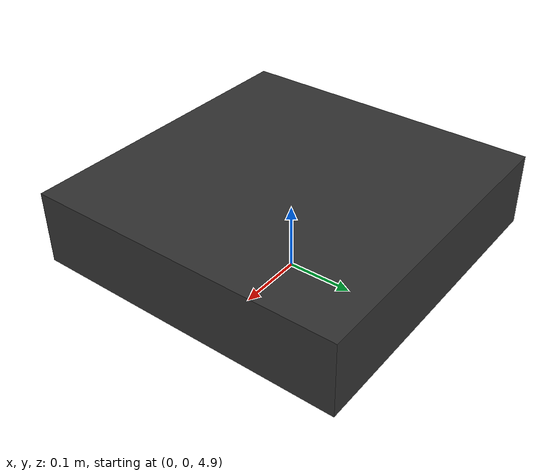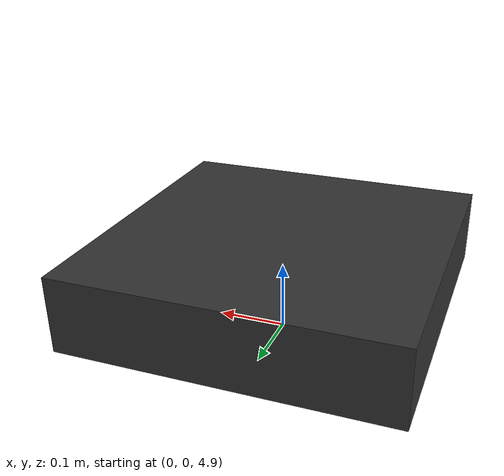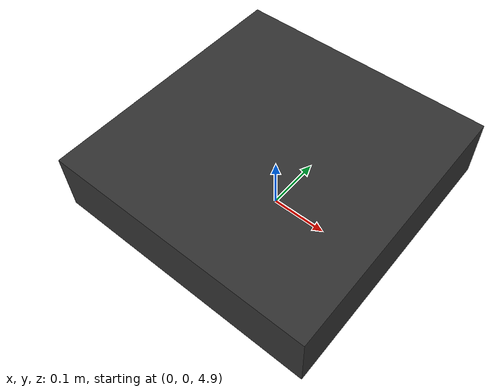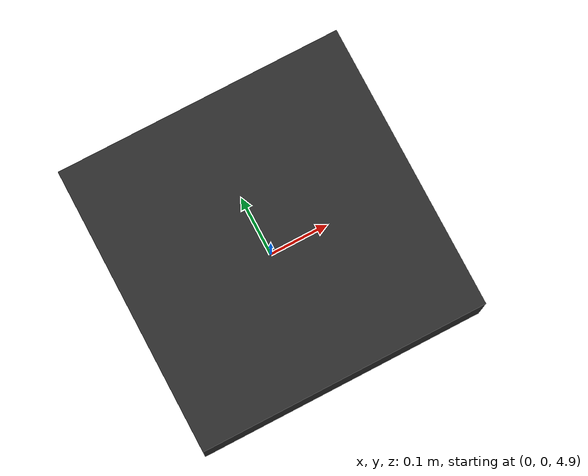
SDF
<?xml version="1.0"?>
<sdf version="1.9">
  <world name="robotx_uav_course">

    <plugin filename="libignition-gazebo-physics-system.so"
            name="ignition::gazebo::systems::Physics"/>
    <plugin filename="libignition-gazebo-user-commands-system.so"
            name="ignition::gazebo::systems::UserCommands"/>
    <plugin filename="libignition-gazebo-scene-broadcaster-system.so"
            name="ignition::gazebo::systems::SceneBroadcaster"/>
    <plugin filename="libignition-gazebo-sensors-system.so"
            name="ignition::gazebo::systems::Sensors">
      <render_engine>ogre2</render_engine>
    </plugin>

    <physics name="1ms" type="ignored">
      <max_step_size>0.001</max_step_size>
      <real_time_factor>1.0</real_time_factor>
    </physics>

    <gravity>0 0 -9.81</gravity>

    <!-- Datum matches robotx_uav_course.sdf (Canberra test site) -->
    <spherical_coordinates>
      <surface_model>EARTH_WGS84</surface_model>
      <latitude_deg>-35.363262</latitude_deg>
      <longitude_deg>149.165237</longitude_deg>
      <elevation>0</elevation>
      <heading_deg>0</heading_deg>
    </spherical_coordinates>

    <!-- Flat ground -->
    <model name="ground_plane">
      <static>true</static>
      <link name="link">
        <collision name="col">
          <geometry><plane><normal>0 0 1</normal><size>1000 1000</size></plane></geometry>
        </collision>
      </link>
    </model>

    <model name="iris_uav">
      <pose>0 0 5 0 0 0</pose>
      <link name="base_link">
        <inertial>
          <mass>1.5</mass>
          <inertia>
            <ixx>0.029125</ixx><ixy>0</ixy><ixz>0</ixz>
            <iyy>0.029125</iyy><iyz>0</iyz>
            <izz>0.055225</izz>
          </inertia>
        </inertial>
        <collision name="col">
          <geometry><box><size>0.47 0.47 0.11</size></box></geometry>
        </collision>
        <visual name="vis">
          <geometry><box><size>0.47 0.47 0.11</size></box></geometry>
          <material><ambient>0.2 0.2 0.2 1</ambient></material>
        </visual>
        <!-- IMU sensor: publishes on Gz path bridged by run_e2e_test.sh -->
        <sensor name="imu_sensor" type="imu">
          <always_on>true</always_on>
          <update_rate>200</update_rate>
          <imu/>
        </sensor>
      </link>

      <plugin filename="libignition-gazebo-odometry-publisher-system.so"
              name="ignition::gazebo::systems::OdometryPublisher">
        <odom_topic>/model/iris_uav/odometry</odom_topic>
        <robot_base_frame>base_link</robot_base_frame>
        <odom_frame>odom</odom_frame>
        <publish_rate>30</publish_rate>
      </plugin>
    </model>

  </world>
</sdf>
